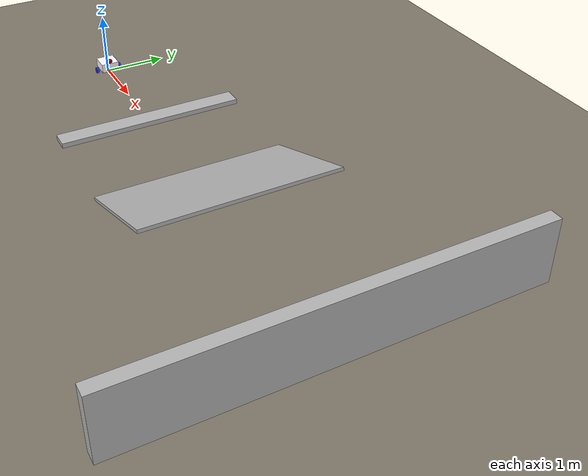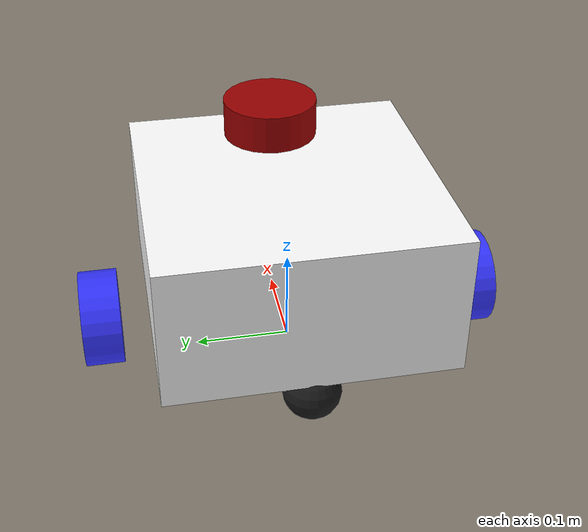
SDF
<?xml version="1.0"?>
<sdf version="1.6">
  <world name="ugv_test">
    <physics name="4ms" type="ignored"><max_step_size>0.004</max_step_size><real_time_factor>1.0</real_time_factor></physics>
    <plugin filename="ignition-gazebo-physics-system" name="gz::sim::systems::Physics"/>
    <plugin filename="ignition-gazebo-scene-broadcaster-system" name="gz::sim::systems::SceneBroadcaster"/>
    <plugin filename="ignition-gazebo-user-commands-system" name="gz::sim::systems::UserCommands"/>
    <plugin filename="ignition-gazebo-sensors-system" name="gz::sim::systems::Sensors"><render_engine>ogre2</render_engine></plugin>
    <scene><ambient>0.6 0.6 0.6 1</ambient><background>0.8 0.85 0.9 1</background></scene>
    <light type="directional" name="sun"><cast_shadows>true</cast_shadows><pose>0 0 10 0 0 0</pose><diffuse>0.9 0.9 0.9 1</diffuse><direction>-0.5 0.3 -1</direction></light>
    <model name="ground"><static>true</static><link name="l">
      <collision name="c"><geometry><box><size>60 60 0.2</size></box></geometry></collision>
      <visual name="v"><geometry><box><size>60 60 0.2</size></box></geometry><material><ambient>0.45 0.42 0.38 1</ambient><diffuse>0.5 0.47 0.42 1</diffuse></material></visual>
      <pose>0 0 -0.1 0 0 0</pose></link></model>
    <model name="ramp"><static>true</static><pose>4.6 0 0.34 0 -0.35 0</pose><link name="l"><collision name="c"><geometry><box><size>2.0 3 0.05</size></box></geometry></collision><visual name="v"><geometry><box><size>2.0 3 0.05</size></box></geometry></visual></link></model>
    <model name="wall"><static>true</static><pose>8 0 0.5 0 0 0</pose><link name="l">
      <collision name="c"><geometry><box><size>0.2 6 1</size></box></geometry></collision>
      <visual name="v"><geometry><box><size>0.2 6 1</size></box></geometry></visual></link></model>
    <model name="curb"><static>true</static><pose>2 0 0.04 0 0 0</pose><link name="l">
      <collision name="c"><geometry><box><size>0.3 3 0.08</size></box></geometry></collision>
      <visual name="v"><geometry><box><size>0.3 3 0.08</size></box></geometry></visual></link></model>
    <include><name>nav_ugv</name><uri>model://nav_ugv</uri><pose>0 0 0 0 0 0</pose>
      <plugin filename="ignition-gazebo-diff-drive-system" name="gz::sim::systems::DiffDrive">
        <left_joint>left_wheel_joint</left_joint><left_joint>rear_left_wheel_joint</left_joint>
        <right_joint>right_wheel_joint</right_joint><right_joint>rear_right_wheel_joint</right_joint>
        <wheel_separation>0.49</wheel_separation><wheel_radius>0.098</wheel_radius>
        <topic>cmd_vel</topic><odom_topic>odometry</odom_topic>
        <frame_id>nav_ugv/wheel_odom</frame_id><child_frame_id>nav_ugv/wheel_odom_base</child_frame_id>
      </plugin>
      <plugin filename="ignition-gazebo-odometry-publisher-system" name="gz::sim::systems::OdometryPublisher">
        <dimensions>2</dimensions><odom_frame>nav_ugv/odom</odom_frame><robot_base_frame>nav_ugv/base_link</robot_base_frame><odom_publish_frequency>30</odom_publish_frequency>
      </plugin>
    </include>
    <model name="chase"><static>true</static><pose>3.5 -5 2.2 0 0.35 1.57</pose><link name="l">
      <sensor name="cam" type="camera"><always_on>true</always_on><update_rate>5</update_rate><topic>/chase/image</topic>
        <camera><horizontal_fov>1.5</horizontal_fov><image><width>960</width><height>540</height></image><clip><near>0.1</near><far>60</far></clip></camera></sensor></link></model>
  </world>
</sdf>

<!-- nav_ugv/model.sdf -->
<sdf version="1.6">
  <model name="nav_ugv">
    <link name="base_link">
      <!-- Chassis center sits at wheel_radius + chassis_z/2 = 0.05 + 0.075
           = 0.125m above the ground - just tall enough that the box's
           bottom face clears the wheels' contact patch. -->
      <pose>0 0 0.125 0 0 0</pose>
      <inertial>
        <mass>1.5</mass>
        <inertia>
          <ixx>0.0138</ixx>
          <ixy>0</ixy>
          <ixz>0</ixz>
          <iyy>0.0138</iyy>
          <iyz>0</iyz>
          <izz>0.0225</izz>
        </inertia>
      </inertial>
      <visual name="chassis_visual">
        <geometry>
          <box>
            <size>0.3 0.3 0.15</size>
          </box>
        </geometry>
        <material>
          <ambient>1 1 1 1</ambient>
          <diffuse>1 1 1 1</diffuse>
          <specular>0.3 0.3 0.3 1</specular>
        </material>
      </visual>
      <collision name="chassis_collision">
        <geometry>
          <box>
            <size>0.3 0.3 0.15</size>
          </box>
        </geometry>
      </collision>

      <visual name="lidar_visual">
        <pose>0.1 0 0.095 0 0 0</pose>
        <geometry>
          <cylinder>
            <radius>0.05</radius>
            <length>0.04</length>
          </cylinder>
        </geometry>
        <material>
          <ambient>0.6 0 0 1</ambient>
          <diffuse>0.6 0 0 1</diffuse>
        </material>
      </visual>
      <sensor name="lidar" type="gpu_lidar">
        <pose>0.1 0 0.095 0 0 0</pose>
        <topic>nav_ugv/scan</topic>
        <update_rate>10</update_rate>
        <always_on>true</always_on>
        <visualize>false</visualize>
        <lidar>
          <scan>
            <horizontal>
              <samples>360</samples>
              <resolution>1</resolution>
              <min_angle>-3.14159</min_angle>
              <max_angle>3.14159</max_angle>
            </horizontal>
            <vertical>
              <samples>1</samples>
              <resolution>1</resolution>
              <min_angle>0</min_angle>
              <max_angle>0</max_angle>
            </vertical>
          </scan>
          <range>
            <min>0.3</min>
            <max>12.0</max>
            <resolution>0.01</resolution>
          </range>
        </lidar>
      </sensor>
    </link>

    <link name="left_wheel">
      <pose>0 0.2 0.05 -1.5708 0 0</pose>
      <inertial>
        <mass>0.2</mass>
        <inertia>
          <ixx>0.00013</ixx>
          <ixy>0</ixy>
          <ixz>0</ixz>
          <iyy>0.00013</iyy>
          <iyz>0</iyz>
          <izz>0.00025</izz>
        </inertia>
      </inertial>
      <visual name="visual">
        <geometry>
          <cylinder>
            <radius>0.05</radius>
            <length>0.04</length>
          </cylinder>
        </geometry>
        <material>
          <ambient>0.2 0.2 1 1</ambient>
          <diffuse>0.2 0.2 1 1</diffuse>
        </material>
      </visual>
      <collision name="collision">
        <geometry>
          <sphere>
            <radius>0.05</radius>
          </sphere>
        </geometry>
      </collision>
    </link>

    <link name="right_wheel">
      <pose>0 -0.2 0.05 -1.5708 0 0</pose>
      <inertial>
        <mass>0.2</mass>
        <inertia>
          <ixx>0.00013</ixx>
          <ixy>0</ixy>
          <ixz>0</ixz>
          <iyy>0.00013</iyy>
          <iyz>0</iyz>
          <izz>0.00025</izz>
        </inertia>
      </inertial>
      <visual name="visual">
        <geometry>
          <cylinder>
            <radius>0.05</radius>
            <length>0.04</length>
          </cylinder>
        </geometry>
        <material>
          <ambient>0.2 0.2 1 1</ambient>
          <diffuse>0.2 0.2 1 1</diffuse>
        </material>
      </visual>
      <collision name="collision">
        <geometry>
          <sphere>
            <radius>0.05</radius>
          </sphere>
        </geometry>
      </collision>
    </link>

    <link name="caster_wheel">
      <pose>-0.13 0 0.03 0 0 0</pose>
      <inertial>
        <mass>0.1</mass>
        <inertia>
          <ixx>0.000036</ixx>
          <ixy>0</ixy>
          <ixz>0</ixz>
          <iyy>0.000036</iyy>
          <iyz>0</iyz>
          <izz>0.000036</izz>
        </inertia>
      </inertial>
      <visual name="visual">
        <geometry>
          <sphere>
            <radius>0.03</radius>
          </sphere>
        </geometry>
        <material>
          <ambient>0.1 0.1 0.1 1</ambient>
          <diffuse>0.1 0.1 0.1 1</diffuse>
        </material>
      </visual>
      <collision name="collision">
        <geometry>
          <sphere>
            <radius>0.03</radius>
          </sphere>
        </geometry>
        <surface>
          <friction>
            <ode>
              <mu>0.001</mu>
              <mu2>0.001</mu2>
            </ode>
          </friction>
        </surface>
      </collision>
    </link>

    <link name="front_caster_wheel">
      <pose>0.13 0 0.03 0 0 0</pose>
      <inertial>
        <mass>0.1</mass>
        <inertia>
          <ixx>0.000036</ixx>
          <ixy>0</ixy>
          <ixz>0</ixz>
          <iyy>0.000036</iyy>
          <iyz>0</iyz>
          <izz>0.000036</izz>
        </inertia>
      </inertial>
      <visual name="visual">
        <geometry>
          <sphere>
            <radius>0.03</radius>
          </sphere>
        </geometry>
        <material>
          <ambient>0.1 0.1 0.1 1</ambient>
          <diffuse>0.1 0.1 0.1 1</diffuse>
        </material>
      </visual>
      <collision name="collision">
        <geometry>
          <sphere>
            <radius>0.03</radius>
          </sphere>
        </geometry>
        <surface>
          <friction>
            <ode>
              <mu>0.001</mu>
              <mu2>0.001</mu2>
            </ode>
          </friction>
        </surface>
      </collision>
    </link>

    <joint name="left_wheel_joint" type="revolute">
      <parent>base_link</parent>
      <child>left_wheel</child>
      <axis>
        <xyz>0 0 1</xyz>
        <limit>
          <lower>-1.79769e+308</lower>
          <upper>1.79769e+308</upper>
        </limit>
      </axis>
    </joint>

    <joint name="right_wheel_joint" type="revolute">
      <parent>base_link</parent>
      <child>right_wheel</child>
      <axis>
        <xyz>0 0 1</xyz>
        <limit>
          <lower>-1.79769e+308</lower>
          <upper>1.79769e+308</upper>
        </limit>
      </axis>
    </joint>

    <joint name="front_caster_wheel_joint" type="ball">
      <parent>base_link</parent>
      <child>front_caster_wheel</child>
    </joint>

    <joint name="caster_wheel_joint" type="ball">
      <parent>base_link</parent>
      <child>caster_wheel</child>
    </joint>

    <link name="front_camera_link">
      <pose>0.18 0 0.05 0 0.6 0</pose>
      <visual name="front_camera_visual">
        <geometry>
          <box>
            <size>0.03 0.05 0.03</size>
          </box>
        </geometry>
        <material>
          <ambient>0.05 0.05 0.05 1</ambient>
          <diffuse>0.05 0.05 0.05 1</diffuse>
        </material>
      </visual>
      <sensor name="front_camera" type="rgbd_camera">
        <pose>0 0 0 0 0 0</pose>
        <always_on>true</always_on>
        <update_rate>10</update_rate>
        <visualize>true</visualize>
        <topic>nav_ugv/front_camera</topic>
        <camera>
          <horizontal_fov>1.047</horizontal_fov>
          <image>
            <width>320</width>
            <height>240</height>
          </image>
          <clip>
            <near>0.1</near>
            <far>8.0</far>
          </clip>
        </camera>
      </sensor>
    </link>
    <joint name="front_camera_joint" type="fixed">
      <parent>base_link</parent>
      <child>front_camera_link</child>
    </joint>

    <link name="video_camera_link">
      <pose>0.1 0 0.22 0 0.15 0</pose>
      <inertial>
        <mass>0.02</mass>
        <inertia>
          <ixx>0.000005</ixx>
          <iyy>0.000005</iyy>
          <izz>0.000005</izz>
          <ixy>0</ixy>
          <ixz>0</ixz>
          <iyz>0</iyz>
        </inertia>
      </inertial>
      <visual name="video_camera_visual">
        <geometry>
          <box>
            <size>0.03 0.05 0.03</size>
          </box>
        </geometry>
        <material>
          <ambient>0.05 0.05 0.05 1</ambient>
          <diffuse>0.05 0.05 0.05 1</diffuse>
        </material>
      </visual>
      <sensor name="video_camera" type="camera">
        <pose>0 0 0 0 0 0</pose>
        <always_on>true</always_on>
        <update_rate>10</update_rate>
        <visualize>true</visualize>
        <topic>nav_ugv/video_camera</topic>
        <camera>
          <horizontal_fov>1.3</horizontal_fov>
          <image>
            <width>320</width>
            <height>240</height>
          </image>
          <clip>
            <near>0.1</near>
            <far>15.0</far>
          </clip>
        </camera>
      </sensor>
    </link>
    <joint name="video_camera_joint" type="fixed">
      <parent>base_link</parent>
      <child>video_camera_link</child>
    </joint>
  </model>
</sdf>
